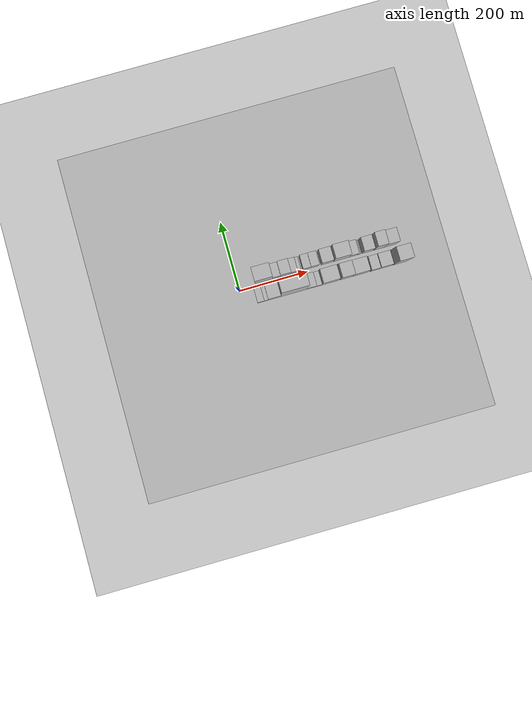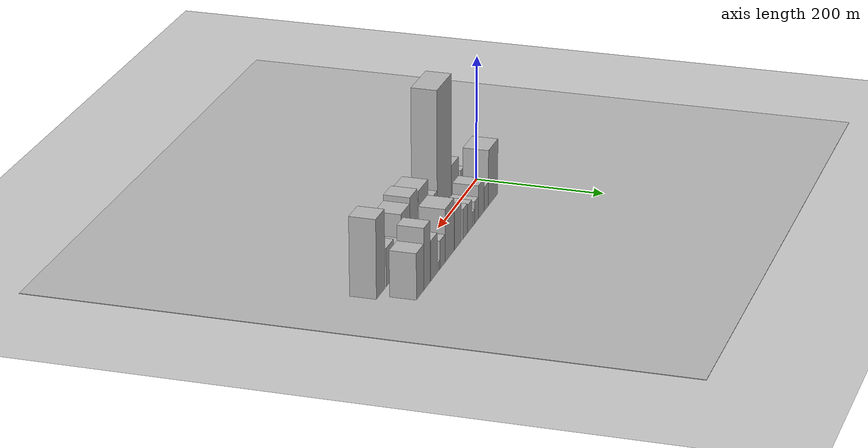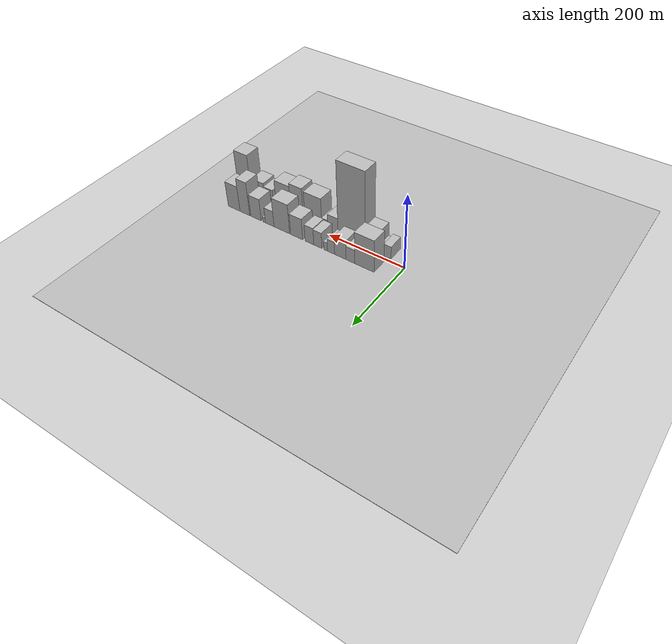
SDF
<?xml version="1.0" encoding="utf-8"?>

<sdf version="1.6">

   <world name="default">

      <gui fullscreen="0">

         <camera name="user_camera">

            <pose>-15 0 4.57585 0 0 0</pose>

            <view_controller>orbit</view_controller>

         </camera>

      </gui>

      <scene>

         <sky>

           <clouds>

             <speed>12</speed>

           </clouds>

         </sky>

         <ambient>0.4 0.4 0.4 1</ambient>

         <background>0.7 0.7 0.7 1</background>

         <shadows>1</shadows>

      </scene>

      <gravity>0 0 -9.8066</gravity>

      <magnetic_field>6e-06 2.3e-05 -4.2e-05</magnetic_field>

      <physics default="0" name="default_physics" type="ode">

         <ode>

            <solver>

               <type>quick</type>

               <iters>10</iters>

               <sor>1.0</sor>

               <use_dynamic_moi_rescaling>0</use_dynamic_moi_rescaling>

            </solver>

            <constraints>

               <cfm>0</cfm>

               <erp>0.2</erp>

               <contact_max_correcting_vel>100</contact_max_correcting_vel>

               <contact_surface_layer>0.001</contact_surface_layer>

            </constraints>

         </ode>

         <max_step_size>0.004</max_step_size>

         <real_time_factor>1</real_time_factor>

         <real_time_update_rate>250</real_time_update_rate>

      </physics>

      <light name="sun" type="directional">

         <cast_shadows>1</cast_shadows>

         <pose>0 0 10 0 0 0</pose>

         <diffuse>0.8 0.8 0.8 1</diffuse>

         <specular>0.2 0.2 0.2 1</specular>

         <attenuation>

            <range>1000</range>

            <constant>0.9</constant>

            <linear>0.01</linear>

            <quadratic>0.001</quadratic>

         </attenuation>

         <direction>-0.5 0.1 -0.9</direction>

      </light>

      <include>

         <name>ground_plane_1</name>

         <uri>model://HANNAS_ground_plane</uri>

         <pose>0 0 0  0 0 0</pose>

      </include>

      <include>

         <name>ground_plane_2</name>

         <uri>model://HANNAS_ground_plane</uri>

         <pose>100 0 0  0 0 0</pose>

      </include>

      <model name="building_1">

         <static>1</static>

         <pose frame="">73.2418 27.5000 0 0.000000 0.000000 1.570796</pose>

         <link name="link">

            <pose frame="">0 0 45.00 0 0 0</pose>

            <collision name="collision">

               <geometry>

                  <box>

                     <size>40.0000 50.4836 90.0000</size>

                  </box>

               </geometry>

               <max_contacts>10</max_contacts>

               <surface>

                  <contact>

                     <ode/>

                  </contact>

                  <bounce/>

                  <friction>

                     <torsional>

                        <ode/>

                     </torsional>

                     <ode/>

                  </friction>

               </surface>

            </collision>

            <visual name="visual">

               <cast_shadows>0</cast_shadows>

               <geometry>

                  <box>

                     <size>40.0000 50.4836 90.0000</size>

                  </box>

               </geometry>

               <material>

                  <script>

                     <uri>model://HANNAS_wall/materials/scripts</uri>

                     <uri>model://HANNAS_wall/materials/textures</uri>

                     <name>vrc/HANNAS_wall</name>

                  </script>

               </material>

            </visual>

            <self_collide>0</self_collide>

            <enable_wind>0</enable_wind>

            <kinematic>0</kinematic>

         </link>

      </model>

      <model name="building_2">

         <static>1</static>

         <pose frame="">109.9383 27.5000 0 0.000000 0.000000 1.570796</pose>

         <link name="link">

            <pose frame="">0 0 19.50 0 0 0</pose>

            <collision name="collision">

               <geometry>

                  <box>

                     <size>40.0000 22.9094 39.0000</size>

                  </box>

               </geometry>

               <max_contacts>10</max_contacts>

               <surface>

                  <contact>

                     <ode/>

                  </contact>

                  <bounce/>

                  <friction>

                     <torsional>

                        <ode/>

                     </torsional>

                     <ode/>

                  </friction>

               </surface>

            </collision>

            <visual name="visual">

               <cast_shadows>0</cast_shadows>

               <geometry>

                  <box>

                     <size>40.0000 22.9094 39.0000</size>

                  </box>

               </geometry>

               <material>

                  <script>

                     <uri>model://HANNAS_wall/materials/scripts</uri>

                     <uri>model://HANNAS_wall/materials/textures</uri>

                     <name>vrc/HANNAS_wall</name>

                  </script>

               </material>

            </visual>

            <self_collide>0</self_collide>

            <enable_wind>0</enable_wind>

            <kinematic>0</kinematic>

         </link>

      </model>

      <model name="building_3">

         <static>1</static>

         <pose frame="">136.6664 27.5000 0 0.000000 0.000000 1.570796</pose>

         <link name="link">

            <pose frame="">0 0 27.00 0 0 0</pose>

            <collision name="collision">

               <geometry>

                  <box>

                     <size>40.0000 30.5467 54.0000</size>

                  </box>

               </geometry>

               <max_contacts>10</max_contacts>

               <surface>

                  <contact>

                     <ode/>

                  </contact>

                  <bounce/>

                  <friction>

                     <torsional>

                        <ode/>

                     </torsional>

                     <ode/>

                  </friction>

               </surface>

            </collision>

            <visual name="visual">

               <cast_shadows>0</cast_shadows>

               <geometry>

                  <box>

                     <size>40.0000 30.5467 54.0000</size>

                  </box>

               </geometry>

               <material>

                  <script>

                     <uri>model://HANNAS_wall/materials/scripts</uri>

                     <uri>model://HANNAS_wall/materials/textures</uri>

                     <name>vrc/HANNAS_wall</name>

                  </script>

               </material>

            </visual>

            <self_collide>0</self_collide>

            <enable_wind>0</enable_wind>

            <kinematic>0</kinematic>

         </link>

      </model>

      <model name="building_4">

         <static>1</static>

         <pose frame="">161.5848 27.5000 0 0.000000 0.000000 1.570796</pose>

         <link name="link">

            <pose frame="">0 0 18.00 0 0 0</pose>

            <collision name="collision">

               <geometry>

                  <box>

                     <size>40.0000 19.2902 36.0000</size>

                  </box>

               </geometry>

               <max_contacts>10</max_contacts>

               <surface>

                  <contact>

                     <ode/>

                  </contact>

                  <bounce/>

                  <friction>

                     <torsional>

                        <ode/>

                     </torsional>

                     <ode/>

                  </friction>

               </surface>

            </collision>

            <visual name="visual">

               <cast_shadows>0</cast_shadows>

               <geometry>

                  <box>

                     <size>40.0000 19.2902 36.0000</size>

                  </box>

               </geometry>

               <material>

                  <script>

                     <uri>model://HANNAS_wall/materials/scripts</uri>

                     <uri>model://HANNAS_wall/materials/textures</uri>

                     <name>vrc/HANNAS_wall</name>

                  </script>

               </material>

            </visual>

            <self_collide>0</self_collide>

            <enable_wind>0</enable_wind>

            <kinematic>0</kinematic>

         </link>

      </model>

      <model name="building_5">

         <static>1</static>

         <pose frame="">176.3544 27.5000 0 0.000000 0.000000 1.570796</pose>

         <link name="link">

            <pose frame="">0 0 12.00 0 0 0</pose>

            <collision name="collision">

               <geometry>

                  <box>

                     <size>40.0000 10.2491 24.0000</size>

                  </box>

               </geometry>

               <max_contacts>10</max_contacts>

               <surface>

                  <contact>

                     <ode/>

                  </contact>

                  <bounce/>

                  <friction>

                     <torsional>

                        <ode/>

                     </torsional>

                     <ode/>

                  </friction>

               </surface>

            </collision>

            <visual name="visual">

               <cast_shadows>0</cast_shadows>

               <geometry>

                  <box>

                     <size>40.0000 10.2491 24.0000</size>

                  </box>

               </geometry>

               <material>

                  <script>

                     <uri>model://HANNAS_wall/materials/scripts</uri>

                     <uri>model://HANNAS_wall/materials/textures</uri>

                     <name>vrc/HANNAS_wall</name>

                  </script>

               </material>

            </visual>

            <self_collide>0</self_collide>

            <enable_wind>0</enable_wind>

            <kinematic>0</kinematic>

         </link>

      </model>

      <model name="building_6">

         <static>1</static>

         <pose frame="">197.8330 27.5000 0 0.000000 0.000000 1.570796</pose>

         <link name="link">

            <pose frame="">0 0 22.50 0 0 0</pose>

            <collision name="collision">

               <geometry>

                  <box>

                     <size>40.0000 22.7079 45.0000</size>

                  </box>

               </geometry>

               <max_contacts>10</max_contacts>

               <surface>

                  <contact>

                     <ode/>

                  </contact>

                  <bounce/>

                  <friction>

                     <torsional>

                        <ode/>

                     </torsional>

                     <ode/>

                  </friction>

               </surface>

            </collision>

            <visual name="visual">

               <cast_shadows>0</cast_shadows>

               <geometry>

                  <box>

                     <size>40.0000 22.7079 45.0000</size>

                  </box>

               </geometry>

               <material>

                  <script>

                     <uri>model://HANNAS_wall/materials/scripts</uri>

                     <uri>model://HANNAS_wall/materials/textures</uri>

                     <name>vrc/HANNAS_wall</name>

                  </script>

               </material>

            </visual>

            <self_collide>0</self_collide>

            <enable_wind>0</enable_wind>

            <kinematic>0</kinematic>

         </link>

      </model>

      <model name="building_7">

         <static>1</static>

         <pose frame="">221.2856 27.5000 0 0.000000 0.000000 1.570796</pose>

         <link name="link">

            <pose frame="">0 0 24.00 0 0 0</pose>

            <collision name="collision">

               <geometry>

                  <box>

                     <size>40.0000 24.1974 48.0000</size>

                  </box>

               </geometry>

               <max_contacts>10</max_contacts>

               <surface>

                  <contact>

                     <ode/>

                  </contact>

                  <bounce/>

                  <friction>

                     <torsional>

                        <ode/>

                     </torsional>

                     <ode/>

                  </friction>

               </surface>

            </collision>

            <visual name="visual">

               <cast_shadows>0</cast_shadows>

               <geometry>

                  <box>

                     <size>40.0000 24.1974 48.0000</size>

                  </box>

               </geometry>

               <material>

                  <script>

                     <uri>model://HANNAS_wall/materials/scripts</uri>

                     <uri>model://HANNAS_wall/materials/textures</uri>

                     <name>vrc/HANNAS_wall</name>

                  </script>

               </material>

            </visual>

            <self_collide>0</self_collide>

            <enable_wind>0</enable_wind>

            <kinematic>0</kinematic>

         </link>

      </model>

      <model name="building_8">

         <static>1</static>

         <pose frame="">257.4018 27.5000 0 0.000000 0.000000 1.570796</pose>

         <link name="link">

            <pose frame="">0 0 30.00 0 0 0</pose>

            <collision name="collision">

               <geometry>

                  <box>

                     <size>40.0000 34.0350 60.0000</size>

                  </box>

               </geometry>

               <max_contacts>10</max_contacts>

               <surface>

                  <contact>

                     <ode/>

                  </contact>

                  <bounce/>

                  <friction>

                     <torsional>

                        <ode/>

                     </torsional>

                     <ode/>

                  </friction>

               </surface>

            </collision>

            <visual name="visual">

               <cast_shadows>0</cast_shadows>

               <geometry>

                  <box>

                     <size>40.0000 34.0350 60.0000</size>

                  </box>

               </geometry>

               <material>

                  <script>

                     <uri>model://HANNAS_wall/materials/scripts</uri>

                     <uri>model://HANNAS_wall/materials/textures</uri>

                     <name>vrc/HANNAS_wall</name>

                  </script>

               </material>

            </visual>

            <self_collide>0</self_collide>

            <enable_wind>0</enable_wind>

            <kinematic>0</kinematic>

         </link>

      </model>

      <model name="building_9">

         <static>1</static>

         <pose frame="">299.9891 27.5000 0 0.000000 0.000000 1.570796</pose>

         <link name="link">

            <pose frame="">0 0 42.00 0 0 0</pose>

            <collision name="collision">

               <geometry>

                  <box>

                     <size>40.0000 45.1396 84.0000</size>

                  </box>

               </geometry>

               <max_contacts>10</max_contacts>

               <surface>

                  <contact>

                     <ode/>

                  </contact>

                  <bounce/>

                  <friction>

                     <torsional>

                        <ode/>

                     </torsional>

                     <ode/>

                  </friction>

               </surface>

            </collision>

            <visual name="visual">

               <cast_shadows>0</cast_shadows>

               <geometry>

                  <box>

                     <size>40.0000 45.1396 84.0000</size>

                  </box>

               </geometry>

               <material>

                  <script>

                     <uri>model://HANNAS_wall/materials/scripts</uri>

                     <uri>model://HANNAS_wall/materials/textures</uri>

                     <name>vrc/HANNAS_wall</name>

                  </script>

               </material>

            </visual>

            <self_collide>0</self_collide>

            <enable_wind>0</enable_wind>

            <kinematic>0</kinematic>

         </link>

      </model>

      <model name="building_10">

         <static>1</static>

         <pose frame="">335.3266 27.5000 0 0.000000 0.000000 1.570796</pose>

         <link name="link">

            <pose frame="">0 0 22.50 0 0 0</pose>

            <collision name="collision">

               <geometry>

                  <box>

                     <size>40.0000 25.5353 45.0000</size>

                  </box>

               </geometry>

               <max_contacts>10</max_contacts>

               <surface>

                  <contact>

                     <ode/>

                  </contact>

                  <bounce/>

                  <friction>

                     <torsional>

                        <ode/>

                     </torsional>

                     <ode/>

                  </friction>

               </surface>

            </collision>

            <visual name="visual">

               <cast_shadows>0</cast_shadows>

               <geometry>

                  <box>

                     <size>40.0000 25.5353 45.0000</size>

                  </box>

               </geometry>

               <material>

                  <script>

                     <uri>model://HANNAS_wall/materials/scripts</uri>

                     <uri>model://HANNAS_wall/materials/textures</uri>

                     <name>vrc/HANNAS_wall</name>

                  </script>

               </material>

            </visual>

            <self_collide>0</self_collide>

            <enable_wind>0</enable_wind>

            <kinematic>0</kinematic>

         </link>

      </model>

      <model name="building_11">

         <static>1</static>

         <pose frame="">351.8180 27.5000 0 0.000000 0.000000 1.570796</pose>

         <link name="link">

            <pose frame="">0 0 7.50 0 0 0</pose>

            <collision name="collision">

               <geometry>

                  <box>

                     <size>40.0000 7.4475 15.0000</size>

                  </box>

               </geometry>

               <max_contacts>10</max_contacts>

               <surface>

                  <contact>

                     <ode/>

                  </contact>

                  <bounce/>

                  <friction>

                     <torsional>

                        <ode/>

                     </torsional>

                     <ode/>

                  </friction>

               </surface>

            </collision>

            <visual name="visual">

               <cast_shadows>0</cast_shadows>

               <geometry>

                  <box>

                     <size>40.0000 7.4475 15.0000</size>

                  </box>

               </geometry>

               <material>

                  <script>

                     <uri>model://HANNAS_wall/materials/scripts</uri>

                     <uri>model://HANNAS_wall/materials/textures</uri>

                     <name>vrc/HANNAS_wall</name>

                  </script>

               </material>

            </visual>

            <self_collide>0</self_collide>

            <enable_wind>0</enable_wind>

            <kinematic>0</kinematic>

         </link>

      </model>

      <model name="building_12">

         <static>1</static>

         <pose frame="">376.3181 27.5000 0 0.000000 0.000000 1.570796</pose>

         <link name="link">

            <pose frame="">0 0 31.50 0 0 0</pose>

            <collision name="collision">

               <geometry>

                  <box>

                     <size>40.0000 31.5528 63.0000</size>

                  </box>

               </geometry>

               <max_contacts>10</max_contacts>

               <surface>

                  <contact>

                     <ode/>

                  </contact>

                  <bounce/>

                  <friction>

                     <torsional>

                        <ode/>

                     </torsional>

                     <ode/>

                  </friction>

               </surface>

            </collision>

            <visual name="visual">

               <cast_shadows>0</cast_shadows>

               <geometry>

                  <box>

                     <size>40.0000 31.5528 63.0000</size>

                  </box>

               </geometry>

               <material>

                  <script>

                     <uri>model://HANNAS_wall/materials/scripts</uri>

                     <uri>model://HANNAS_wall/materials/textures</uri>

                     <name>vrc/HANNAS_wall</name>

                  </script>

               </material>

            </visual>

            <self_collide>0</self_collide>

            <enable_wind>0</enable_wind>

            <kinematic>0</kinematic>

         </link>

      </model>

      <model name="building_13">

         <static>1</static>

         <pose frame="">410.0059 27.5000 0 0.000000 0.000000 1.570796</pose>

         <link name="link">

            <pose frame="">0 0 48.00 0 0 0</pose>

            <collision name="collision">

               <geometry>

                  <box>

                     <size>40.0000 29.8227 96.0000</size>

                  </box>

               </geometry>

               <max_contacts>10</max_contacts>

               <surface>

                  <contact>

                     <ode/>

                  </contact>

                  <bounce/>

                  <friction>

                     <torsional>

                        <ode/>

                     </torsional>

                     <ode/>

                  </friction>

               </surface>

            </collision>

            <visual name="visual">

               <cast_shadows>0</cast_shadows>

               <geometry>

                  <box>

                     <size>40.0000 29.8227 96.0000</size>

                  </box>

               </geometry>

               <material>

                  <script>

                     <uri>model://HANNAS_wall/materials/scripts</uri>

                     <uri>model://HANNAS_wall/materials/textures</uri>

                     <name>vrc/HANNAS_wall</name>

                  </script>

               </material>

            </visual>

            <self_collide>0</self_collide>

            <enable_wind>0</enable_wind>

            <kinematic>0</kinematic>

         </link>

      </model>

      <model name="building_14">

         <static>1</static>

         <pose frame="">443.0819 27.5000 0 0.000000 0.000000 1.570796</pose>

         <link name="link">

            <pose frame="">0 0 36.00 0 0 0</pose>

            <collision name="collision">

               <geometry>

                  <box>

                     <size>40.0000 36.3294 72.0000</size>

                  </box>

               </geometry>

               <max_contacts>10</max_contacts>

               <surface>

                  <contact>

                     <ode/>

                  </contact>

                  <bounce/>

                  <friction>

                     <torsional>

                        <ode/>

                     </torsional>

                     <ode/>

                  </friction>

               </surface>

            </collision>

            <visual name="visual">

               <cast_shadows>0</cast_shadows>

               <geometry>

                  <box>

                     <size>40.0000 36.3294 72.0000</size>

                  </box>

               </geometry>

               <material>

                  <script>

                     <uri>model://HANNAS_wall/materials/scripts</uri>

                     <uri>model://HANNAS_wall/materials/textures</uri>

                     <name>vrc/HANNAS_wall</name>

                  </script>

               </material>

            </visual>

            <self_collide>0</self_collide>

            <enable_wind>0</enable_wind>

            <kinematic>0</kinematic>

         </link>

      </model>

      <model name="building_15">

         <static>1</static>

         <pose frame="">49.7497 -27.5000 0 0.000000 0.000000 1.570796</pose>

         <link name="link">

            <pose frame="">0 0 18.00 0 0 0</pose>

            <collision name="collision">

               <geometry>

                  <box>

                     <size>40.0000 19.4994 36.0000</size>

                  </box>

               </geometry>

               <max_contacts>10</max_contacts>

               <surface>

                  <contact>

                     <ode/>

                  </contact>

                  <bounce/>

                  <friction>

                     <torsional>

                        <ode/>

                     </torsional>

                     <ode/>

                  </friction>

               </surface>

            </collision>

            <visual name="visual">

               <cast_shadows>0</cast_shadows>

               <geometry>

                  <box>

                     <size>40.0000 19.4994 36.0000</size>

                  </box>

               </geometry>

               <material>

                  <script>

                     <uri>model://HANNAS_wall/materials/scripts</uri>

                     <uri>model://HANNAS_wall/materials/textures</uri>

                     <name>vrc/HANNAS_wall</name>

                  </script>

               </material>

            </visual>

            <self_collide>0</self_collide>

            <enable_wind>0</enable_wind>

            <kinematic>0</kinematic>

         </link>

      </model>

      <model name="building_16">

         <static>1</static>

         <pose frame="">65.1363 -27.5000 0 0.000000 0.000000 1.570796</pose>

         <link name="link">

            <pose frame="">0 0 13.50 0 0 0</pose>

            <collision name="collision">

               <geometry>

                  <box>

                     <size>40.0000 11.2738 27.0000</size>

                  </box>

               </geometry>

               <max_contacts>10</max_contacts>

               <surface>

                  <contact>

                     <ode/>

                  </contact>

                  <bounce/>

                  <friction>

                     <torsional>

                        <ode/>

                     </torsional>

                     <ode/>

                  </friction>

               </surface>

            </collision>

            <visual name="visual">

               <cast_shadows>0</cast_shadows>

               <geometry>

                  <box>

                     <size>40.0000 11.2738 27.0000</size>

                  </box>

               </geometry>

               <material>

                  <script>

                     <uri>model://HANNAS_wall/materials/scripts</uri>

                     <uri>model://HANNAS_wall/materials/textures</uri>

                     <name>vrc/HANNAS_wall</name>

                  </script>

               </material>

            </visual>

            <self_collide>0</self_collide>

            <enable_wind>0</enable_wind>

            <kinematic>0</kinematic>

         </link>

      </model>

      <model name="building_17">

         <static>1</static>

         <pose frame="">89.0653 -27.5000 0 0.000000 0.000000 1.570796</pose>

         <link name="link">

            <pose frame="">0 0 31.50 0 0 0</pose>

            <collision name="collision">

               <geometry>

                  <box>

                     <size>40.0000 36.5842 63.0000</size>

                  </box>

               </geometry>

               <max_contacts>10</max_contacts>

               <surface>

                  <contact>

                     <ode/>

                  </contact>

                  <bounce/>

                  <friction>

                     <torsional>

                        <ode/>

                     </torsional>

                     <ode/>

                  </friction>

               </surface>

            </collision>

            <visual name="visual">

               <cast_shadows>0</cast_shadows>

               <geometry>

                  <box>

                     <size>40.0000 36.5842 63.0000</size>

                  </box>

               </geometry>

               <material>

                  <script>

                     <uri>model://HANNAS_wall/materials/scripts</uri>

                     <uri>model://HANNAS_wall/materials/textures</uri>

                     <name>vrc/HANNAS_wall</name>

                  </script>

               </material>

            </visual>

            <self_collide>0</self_collide>

            <enable_wind>0</enable_wind>

            <kinematic>0</kinematic>

         </link>

      </model>

      <model name="building_18">

         <static>1</static>

         <pose frame="">144.4300 -27.5000 0 0.000000 0.000000 1.570796</pose>

         <link name="link">

            <pose frame="">0 0 105.00 0 0 0</pose>

            <collision name="collision">

               <geometry>

                  <box>

                     <size>40.0000 74.1453 210.0000</size>

                  </box>

               </geometry>

               <max_contacts>10</max_contacts>

               <surface>

                  <contact>

                     <ode/>

                  </contact>

                  <bounce/>

                  <friction>

                     <torsional>

                        <ode/>

                     </torsional>

                     <ode/>

                  </friction>

               </surface>

            </collision>

            <visual name="visual">

               <cast_shadows>0</cast_shadows>

               <geometry>

                  <box>

                     <size>40.0000 74.1453 210.0000</size>

                  </box>

               </geometry>

               <material>

                  <script>

                     <uri>model://HANNAS_wall/materials/scripts</uri>

                     <uri>model://HANNAS_wall/materials/textures</uri>

                     <name>vrc/HANNAS_wall</name>

                  </script>

               </material>

            </visual>

            <self_collide>0</self_collide>

            <enable_wind>0</enable_wind>

            <kinematic>0</kinematic>

         </link>

      </model>

      <model name="building_19">

         <static>1</static>

         <pose frame="">195.6673 -27.5000 0 0.000000 0.000000 1.570796</pose>

         <link name="link">

            <pose frame="">0 0 25.50 0 0 0</pose>

            <collision name="collision">

               <geometry>

                  <box>

                     <size>40.0000 28.3293 51.0000</size>

                  </box>

               </geometry>

               <max_contacts>10</max_contacts>

               <surface>

                  <contact>

                     <ode/>

                  </contact>

                  <bounce/>

                  <friction>

                     <torsional>

                        <ode/>

                     </torsional>

                     <ode/>

                  </friction>

               </surface>

            </collision>

            <visual name="visual">

               <cast_shadows>0</cast_shadows>

               <geometry>

                  <box>

                     <size>40.0000 28.3293 51.0000</size>

                  </box>

               </geometry>

               <material>

                  <script>

                     <uri>model://HANNAS_wall/materials/scripts</uri>

                     <uri>model://HANNAS_wall/materials/textures</uri>

                     <name>vrc/HANNAS_wall</name>

                  </script>

               </material>

            </visual>

            <self_collide>0</self_collide>

            <enable_wind>0</enable_wind>

            <kinematic>0</kinematic>

         </link>

      </model>

      <model name="building_20">

         <static>1</static>

         <pose frame="">218.1284 -27.5000 0 0.000000 0.000000 1.570796</pose>

         <link name="link">

            <pose frame="">0 0 16.50 0 0 0</pose>

            <collision name="collision">

               <geometry>

                  <box>

                     <size>40.0000 16.5929 33.0000</size>

                  </box>

               </geometry>

               <max_contacts>10</max_contacts>

               <surface>

                  <contact>

                     <ode/>

                  </contact>

                  <bounce/>

                  <friction>

                     <torsional>

                        <ode/>

                     </torsional>

                     <ode/>

                  </friction>

               </surface>

            </collision>

            <visual name="visual">

               <cast_shadows>0</cast_shadows>

               <geometry>

                  <box>

                     <size>40.0000 16.5929 33.0000</size>

                  </box>

               </geometry>

               <material>

                  <script>

                     <uri>model://HANNAS_wall/materials/scripts</uri>

                     <uri>model://HANNAS_wall/materials/textures</uri>

                     <name>vrc/HANNAS_wall</name>

                  </script>

               </material>

            </visual>

            <self_collide>0</self_collide>

            <enable_wind>0</enable_wind>

            <kinematic>0</kinematic>

         </link>

      </model>

      <model name="building_21">

         <static>1</static>

         <pose frame="">250.4595 -27.5000 0 0.000000 0.000000 1.570796</pose>

         <link name="link">

            <pose frame="">0 0 43.50 0 0 0</pose>

            <collision name="collision">

               <geometry>

                  <box>

                     <size>40.0000 48.0692 87.0000</size>

                  </box>

               </geometry>

               <max_contacts>10</max_contacts>

               <surface>

                  <contact>

                     <ode/>

                  </contact>

                  <bounce/>

                  <friction>

                     <torsional>

                        <ode/>

                     </torsional>

                     <ode/>

                  </friction>

               </surface>

            </collision>

            <visual name="visual">

               <cast_shadows>0</cast_shadows>

               <geometry>

                  <box>

                     <size>40.0000 48.0692 87.0000</size>

                  </box>

               </geometry>

               <material>

                  <script>

                     <uri>model://HANNAS_wall/materials/scripts</uri>

                     <uri>model://HANNAS_wall/materials/textures</uri>

                     <name>vrc/HANNAS_wall</name>

                  </script>

               </material>

            </visual>

            <self_collide>0</self_collide>

            <enable_wind>0</enable_wind>

            <kinematic>0</kinematic>

         </link>

      </model>

      <model name="building_22">

         <static>1</static>

         <pose frame="">297.6655 -27.5000 0 0.000000 0.000000 1.570796</pose>

         <link name="link">

            <pose frame="">0 0 46.50 0 0 0</pose>

            <collision name="collision">

               <geometry>

                  <box>

                     <size>40.0000 36.3428 93.0000</size>

                  </box>

               </geometry>

               <max_contacts>10</max_contacts>

               <surface>

                  <contact>

                     <ode/>

                  </contact>

                  <bounce/>

                  <friction>

                     <torsional>

                        <ode/>

                     </torsional>

                     <ode/>

                  </friction>

               </surface>

            </collision>

            <visual name="visual">

               <cast_shadows>0</cast_shadows>

               <geometry>

                  <box>

                     <size>40.0000 36.3428 93.0000</size>

                  </box>

               </geometry>

               <material>

                  <script>

                     <uri>model://HANNAS_wall/materials/scripts</uri>

                     <uri>model://HANNAS_wall/materials/textures</uri>

                     <name>vrc/HANNAS_wall</name>

                  </script>

               </material>

            </visual>

            <self_collide>0</self_collide>

            <enable_wind>0</enable_wind>

            <kinematic>0</kinematic>

         </link>

      </model>

      <model name="building_23">

         <static>1</static>

         <pose frame="">337.5512 -27.5000 0 0.000000 0.000000 1.570796</pose>

         <link name="link">

            <pose frame="">0 0 42.00 0 0 0</pose>

            <collision name="collision">

               <geometry>

                  <box>

                     <size>40.0000 43.4286 84.0000</size>

                  </box>

               </geometry>

               <max_contacts>10</max_contacts>

               <surface>

                  <contact>

                     <ode/>

                  </contact>

                  <bounce/>

                  <friction>

                     <torsional>

                        <ode/>

                     </torsional>

                     <ode/>

                  </friction>

               </surface>

            </collision>

            <visual name="visual">

               <cast_shadows>0</cast_shadows>

               <geometry>

                  <box>

                     <size>40.0000 43.4286 84.0000</size>

                  </box>

               </geometry>

               <material>

                  <script>

                     <uri>model://HANNAS_wall/materials/scripts</uri>

                     <uri>model://HANNAS_wall/materials/textures</uri>

                     <name>vrc/HANNAS_wall</name>

                  </script>

               </material>

            </visual>

            <self_collide>0</self_collide>

            <enable_wind>0</enable_wind>

            <kinematic>0</kinematic>

         </link>

      </model>

      <model name="building_24">

         <static>1</static>

         <pose frame="">380.4099 -27.5000 0 0.000000 0.000000 1.570796</pose>

         <link name="link">

            <pose frame="">0 0 25.50 0 0 0</pose>

            <collision name="collision">

               <geometry>

                  <box>

                     <size>40.0000 26.2887 51.0000</size>

                  </box>

               </geometry>

               <max_contacts>10</max_contacts>

               <surface>

                  <contact>

                     <ode/>

                  </contact>

                  <bounce/>

                  <friction>

                     <torsional>

                        <ode/>

                     </torsional>

                     <ode/>

                  </friction>

               </surface>

            </collision>

            <visual name="visual">

               <cast_shadows>0</cast_shadows>

               <geometry>

                  <box>

                     <size>40.0000 26.2887 51.0000</size>

                  </box>

               </geometry>

               <material>

                  <script>

                     <uri>model://HANNAS_wall/materials/scripts</uri>

                     <uri>model://HANNAS_wall/materials/textures</uri>

                     <name>vrc/HANNAS_wall</name>

                  </script>

               </material>

            </visual>

            <self_collide>0</self_collide>

            <enable_wind>0</enable_wind>

            <kinematic>0</kinematic>

         </link>

      </model>

      <model name="building_25">

         <static>1</static>

         <pose frame="">411.3445 -27.5000 0 0.000000 0.000000 1.570796</pose>

         <link name="link">

            <pose frame="">0 0 30.00 0 0 0</pose>

            <collision name="collision">

               <geometry>

                  <box>

                     <size>40.0000 35.5806 60.0000</size>

                  </box>

               </geometry>

               <max_contacts>10</max_contacts>

               <surface>

                  <contact>

                     <ode/>

                  </contact>

                  <bounce/>

                  <friction>

                     <torsional>

                        <ode/>

                     </torsional>

                     <ode/>

                  </friction>

               </surface>

            </collision>

            <visual name="visual">

               <cast_shadows>0</cast_shadows>

               <geometry>

                  <box>

                     <size>40.0000 35.5806 60.0000</size>

                  </box>

               </geometry>

               <material>

                  <script>

                     <uri>model://HANNAS_wall/materials/scripts</uri>

                     <uri>model://HANNAS_wall/materials/textures</uri>

                     <name>vrc/HANNAS_wall</name>

                  </script>

               </material>

            </visual>

            <self_collide>0</self_collide>

            <enable_wind>0</enable_wind>

            <kinematic>0</kinematic>

         </link>

      </model>

      <model name="building_26">

         <static>1</static>

         <pose frame="">455.1174 -27.5000 0 0.000000 0.000000 1.570796</pose>

         <link name="link">

            <pose frame="">0 0 61.50 0 0 0</pose>

            <collision name="collision">

               <geometry>

                  <box>

                     <size>40.0000 39.9651 123.0000</size>

                  </box>

               </geometry>

               <max_contacts>10</max_contacts>

               <surface>

                  <contact>

                     <ode/>

                  </contact>

                  <bounce/>

                  <friction>

                     <torsional>

                        <ode/>

                     </torsional>

                     <ode/>

                  </friction>

               </surface>

            </collision>

            <visual name="visual">

               <cast_shadows>0</cast_shadows>

               <geometry>

                  <box>

                     <size>40.0000 39.9651 123.0000</size>

                  </box>

               </geometry>

               <material>

                  <script>

                     <uri>model://HANNAS_wall/materials/scripts</uri>

                     <uri>model://HANNAS_wall/materials/textures</uri>

                     <name>vrc/HANNAS_wall</name>

                  </script>

               </material>

            </visual>

            <self_collide>0</self_collide>

            <enable_wind>0</enable_wind>

            <kinematic>0</kinematic>

         </link>

      </model>

   </world>

</sdf>

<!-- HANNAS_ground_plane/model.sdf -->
<sdf version="1.4">
<model name="HANNAS_ground_plane">
  <static>true</static>
    <link name="link">
      <collision name="collision">
        <geometry>
          <plane>
            <normal>0 0 1</normal>
            <size>1000 1000</size>
          </plane>
        </geometry>
        <surface>
          <friction>
            <ode>
              <mu>100</mu>
              <mu2>50</mu2>
            </ode>
          </friction>
        </surface>
      </collision>
      <visual name="visual">
        <cast_shadows>false</cast_shadows>
        <geometry>
          <plane>
            <normal>0 0 1</normal>
            <size>1000 1000</size>
          </plane>
        </geometry>
        <material>
          <script>
            <uri>model://HANNAS_ground_plane/materials/scripts/HANNAS_ground_plane.material</uri>
	    <uri>model://HANNAS_ground_plane/materials/textures</uri>
            <name>HANNASGroundPlane/Image</name>
          </script>
        </material>
      </visual>
    </link>
  </model>
</sdf>
